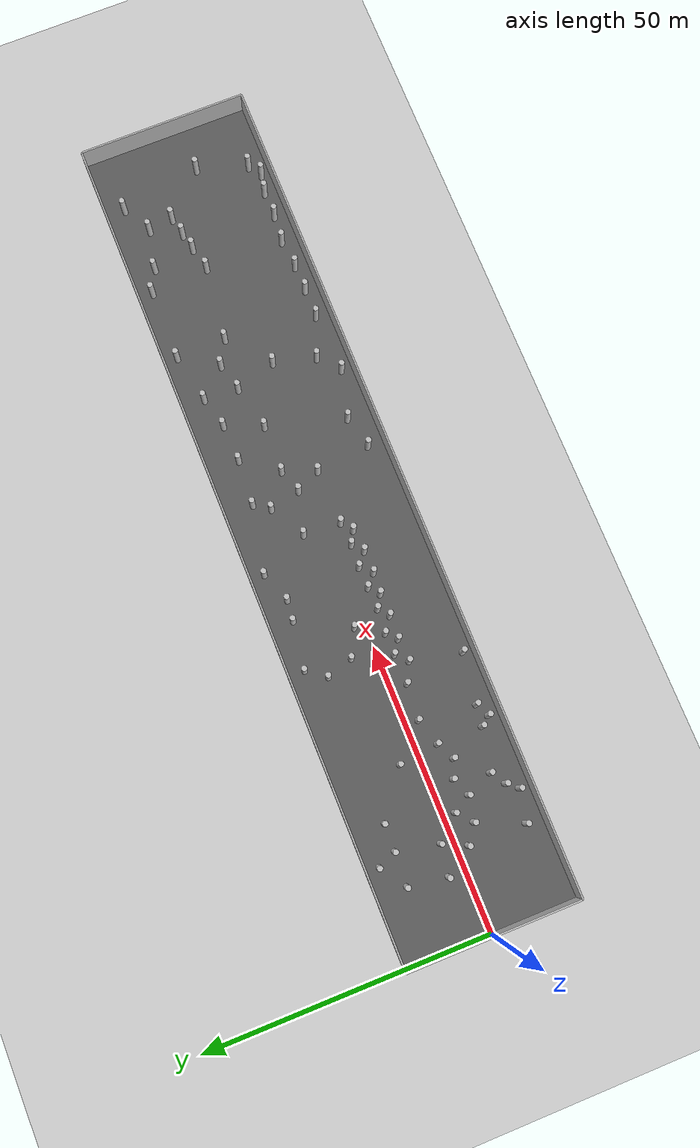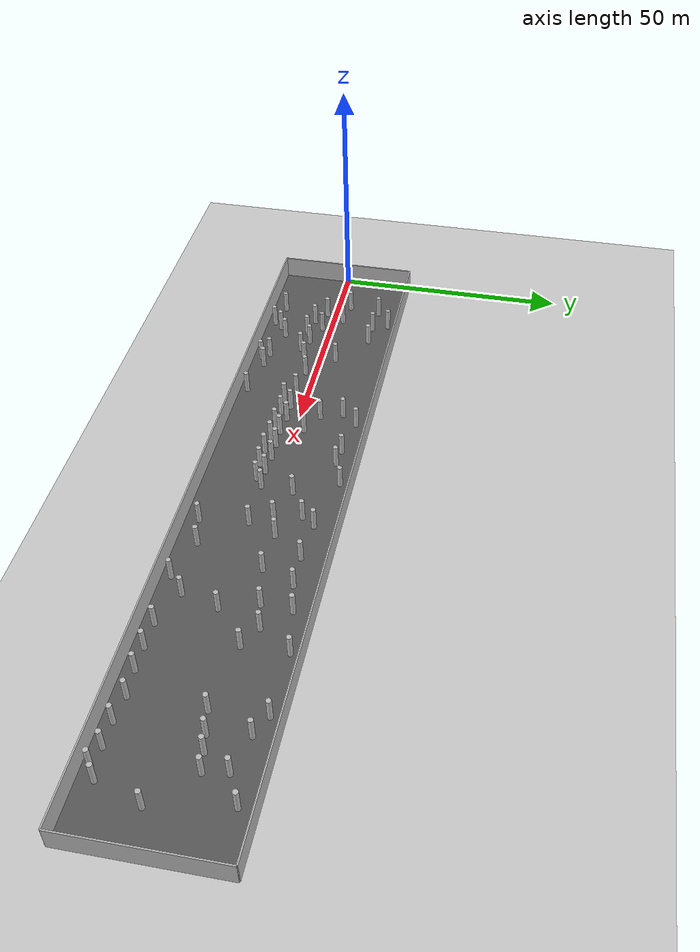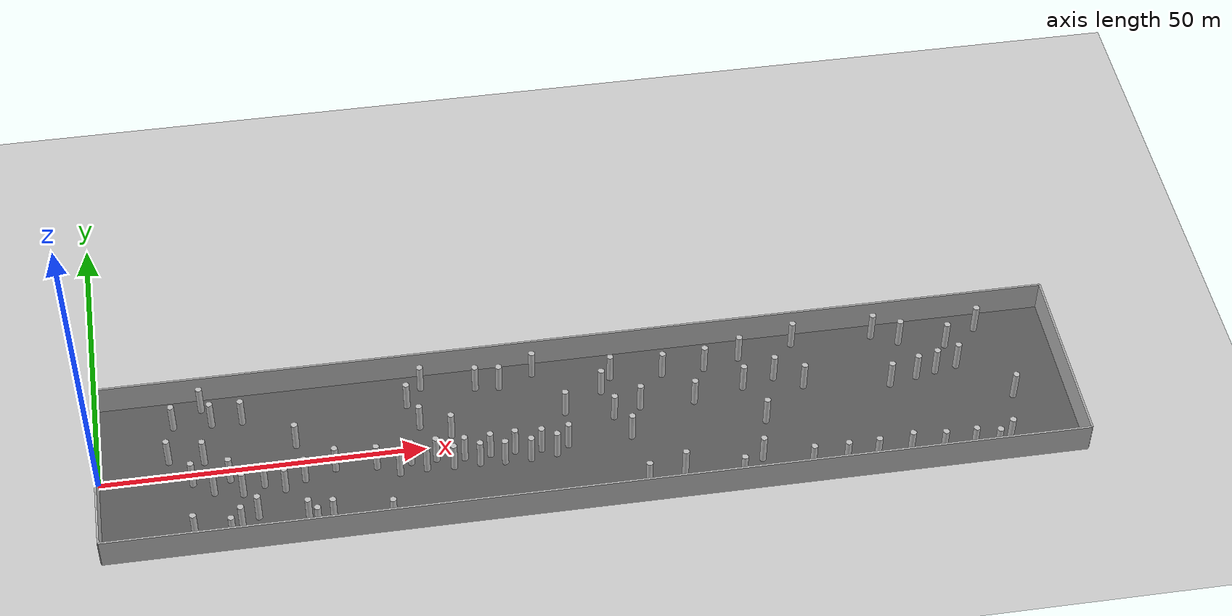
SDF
<?xml version="1.0" ?>
<sdf version="1.5">
  <world name="default">
    <plugin name="gazebo_ros_state" filename="libgazebo_ros_state.so">
      <ros>
        <namespace>/gazebo</namespace>
      </ros>
      <update_rate>20.0</update_rate>
    </plugin>

    <include><uri>model://sun</uri></include>
    <include><uri>model://ground_plane</uri></include>

    <model name="corridor_floor">
      <static>true</static>
      <pose>75 0 0.01 0 0 0</pose>
      <link name="link">
        <collision name="collision">
          <geometry><box><size>150 30 0.02</size></box></geometry>
        </collision>
        <visual name="visual">
          <geometry><box><size>150 30 0.02</size></box></geometry>
          <material>
            <ambient>0.25 0.25 0.25 1</ambient>
            <diffuse>0.35 0.35 0.35 1</diffuse>
          </material>
        </visual>
      </link>
    </model>

    <physics name="default_physics" default="0" type="ode">
      <gravity>0 0 -9.8066</gravity>
      <ode>
        <solver>
          <type>quick</type>
          <iters>10</iters>
          <sor>1.3</sor>
          <use_dynamic_moi_rescaling>0</use_dynamic_moi_rescaling>
        </solver>
        <constraints>
          <cfm>0</cfm>
          <erp>0.2</erp>
          <contact_max_correcting_vel>100</contact_max_correcting_vel>
          <contact_surface_layer>0.001</contact_surface_layer>
        </constraints>
      </ode>
      <max_step_size>0.004</max_step_size>
      <real_time_factor>1</real_time_factor>
      <real_time_update_rate>250</real_time_update_rate>
      <magnetic_field>6.0e-6 2.3e-5 -4.2e-5</magnetic_field>
    </physics>

    <model name="left_wall">
      <static>true</static>
      <pose>75 15.15 2.5 0 0 0</pose>
      <link name="link">
        <collision name="collision">
          <geometry><box><size>150 0.3 5</size></box></geometry>
        </collision>
        <visual name="visual">
          <geometry><box><size>150 0.3 5</size></box></geometry>
        </visual>
      </link>
    </model>

    <model name="right_wall">
      <static>true</static>
      <pose>75 -15.15 2.5 0 0 0</pose>
      <link name="link">
        <collision name="collision">
          <geometry><box><size>150 0.3 5</size></box></geometry>
        </collision>
        <visual name="visual">
          <geometry><box><size>150 0.3 5</size></box></geometry>
        </visual>
      </link>
    </model>

    <model name="start_wall">
      <static>true</static>
      <pose>0 0 2.5 0 0 0</pose>
      <link name="link">
        <collision name="collision">
          <geometry><box><size>0.3 30.3 5</size></box></geometry>
        </collision>
        <visual name="visual">
          <geometry><box><size>0.3 30.3 5</size></box></geometry>
        </visual>
      </link>
    </model>

    <model name="end_wall">
      <static>true</static>
      <pose>150 0 2.5 0 0 0</pose>
      <link name="link">
        <collision name="collision">
          <geometry><box><size>0.3 30.3 5</size></box></geometry>
        </collision>
        <visual name="visual">
          <geometry><box><size>0.3 30.3 5</size></box></geometry>
        </visual>
      </link>
    </model>

    <include><name>cylinder_000</name><uri>model://cylinder_r05_h5</uri><pose>32.353 -13.152 2.5 0 0 0</pose></include>
    <include><name>cylinder_001</name><uri>model://cylinder_r05_h5</uri><pose>31.138 -3.525 2.5 0 0 0</pose></include>
    <include><name>cylinder_002</name><uri>model://cylinder_r05_h5</uri><pose>34.741 -11.988 2.5 0 0 0</pose></include>
    <include><name>cylinder_003</name><uri>model://cylinder_r05_h5</uri><pose>42.108 -2.669 2.5 0 0 0</pose></include>
    <include><name>cylinder_004</name><uri>model://cylinder_r05_h5</uri><pose>21.659 -5.033 2.5 0 0 0</pose></include>
    <include><name>cylinder_005</name><uri>model://cylinder_r05_h5</uri><pose>21.105 -11.392 2.5 0 0 0</pose></include>
    <include><name>cylinder_006</name><uri>model://cylinder_r05_h5</uri><pose>31.083 -11.492 2.5 0 0 0</pose></include>
    <include><name>cylinder_007</name><uri>model://cylinder_r05_h5</uri><pose>24.955 -3.695 2.5 0 0 0</pose></include>
    <include><name>cylinder_008</name><uri>model://cylinder_r05_h5</uri><pose>17.324 -4.144 2.5 0 0 0</pose></include>
    <include><name>cylinder_009</name><uri>model://cylinder_r05_h5</uri><pose>28.022 -5.050 2.5 0 0 0</pose></include>
    <include><name>cylinder_010</name><uri>model://cylinder_r05_h5</uri><pose>19.872 -1.894 2.5 0 0 0</pose></include>
    <include><name>cylinder_011</name><uri>model://cylinder_r05_h5</uri><pose>35.862 -2.113 2.5 0 0 0</pose></include>
    <include><name>cylinder_012</name><uri>model://cylinder_r05_h5</uri><pose>19.569 -13.213 2.5 0 0 0</pose></include>
    <include><name>cylinder_013</name><uri>model://cylinder_r05_h5</uri><pose>43.593 -13.337 2.5 0 0 0</pose></include>
    <include><name>cylinder_014</name><uri>model://cylinder_r05_h5</uri><pose>23.637 -9.746 2.5 0 0 0</pose></include>
    <include><name>cylinder_015</name><uri>model://cylinder_r05_h5</uri><pose>47.367 -2.589 2.5 0 0 0</pose></include>
    <include><name>cylinder_016</name><uri>model://cylinder_r05_h5</uri><pose>45.458 -4.454 2.5 0 0 0</pose></include>
    <include><name>cylinder_017</name><uri>model://cylinder_r05_h5</uri><pose>51.221 -2.503 2.5 0 0 0</pose></include>
    <include><name>cylinder_018</name><uri>model://cylinder_r05_h5</uri><pose>49.580 -4.174 2.5 0 0 0</pose></include>
    <include><name>cylinder_019</name><uri>model://cylinder_r05_h5</uri><pose>55.519 -2.901 2.5 0 0 0</pose></include>
    <include><name>cylinder_020</name><uri>model://cylinder_r05_h5</uri><pose>53.733 -4.358 2.5 0 0 0</pose></include>
    <include><name>cylinder_021</name><uri>model://cylinder_r05_h5</uri><pose>59.477 -2.773 2.5 0 0 0</pose></include>
    <include><name>cylinder_022</name><uri>model://cylinder_r05_h5</uri><pose>57.733 -4.299 2.5 0 0 0</pose></include>
    <include><name>cylinder_023</name><uri>model://cylinder_r05_h5</uri><pose>63.287 -2.688 2.5 0 0 0</pose></include>
    <include><name>cylinder_024</name><uri>model://cylinder_r05_h5</uri><pose>61.519 -4.588 2.5 0 0 0</pose></include>
    <include><name>cylinder_025</name><uri>model://cylinder_r05_h5</uri><pose>67.344 -2.939 2.5 0 0 0</pose></include>
    <include><name>cylinder_026</name><uri>model://cylinder_r05_h5</uri><pose>65.535 -4.555 2.5 0 0 0</pose></include>
    <include><name>cylinder_027</name><uri>model://cylinder_r05_h5</uri><pose>71.530 -2.672 2.5 0 0 0</pose></include>
    <include><name>cylinder_028</name><uri>model://cylinder_r05_h5</uri><pose>69.540 -4.189 2.5 0 0 0</pose></include>
    <include><name>cylinder_029</name><uri>model://cylinder_r05_h5</uri><pose>96.808 -13.052 2.5 0 0 0</pose></include>
    <include><name>cylinder_030</name><uri>model://cylinder_r05_h5</uri><pose>81.403 -2.445 2.5 0 0 0</pose></include>
    <include><name>cylinder_031</name><uri>model://cylinder_r05_h5</uri><pose>88.224 -10.722 2.5 0 0 0</pose></include>
    <include><name>cylinder_032</name><uri>model://cylinder_r05_h5</uri><pose>102.396 -2.374 2.5 0 0 0</pose></include>
    <include><name>cylinder_033</name><uri>model://cylinder_r05_h5</uri><pose>100.373 -9.835 2.5 0 0 0</pose></include>
    <include><name>cylinder_034</name><uri>model://cylinder_r05_h5</uri><pose>82.417 -12.148 2.5 0 0 0</pose></include>
    <include><name>cylinder_035</name><uri>model://cylinder_r05_h5</uri><pose>107.573 -12.562 2.5 0 0 0</pose></include>
    <include><name>cylinder_036</name><uri>model://cylinder_r05_h5</uri><pose>112.853 -12.619 2.5 0 0 0</pose></include>
    <include><name>cylinder_037</name><uri>model://cylinder_r05_h5</uri><pose>117.620 -12.585 2.5 0 0 0</pose></include>
    <include><name>cylinder_038</name><uri>model://cylinder_r05_h5</uri><pose>122.911 -12.156 2.5 0 0 0</pose></include>
    <include><name>cylinder_039</name><uri>model://cylinder_r05_h5</uri><pose>127.911 -12.705 2.5 0 0 0</pose></include>
    <include><name>cylinder_040</name><uri>model://cylinder_r05_h5</uri><pose>132.689 -12.706 2.5 0 0 0</pose></include>
    <include><name>cylinder_041</name><uri>model://cylinder_r05_h5</uri><pose>14.021 -11.952 2.5 0 0 0</pose></include>
    <include><name>cylinder_042</name><uri>model://cylinder_r05_h5</uri><pose>14.239 -1.874 2.5 0 0 0</pose></include>
    <include><name>cylinder_043</name><uri>model://cylinder_r05_h5</uri><pose>138.551 -11.892 2.5 0 0 0</pose></include>
    <include><name>cylinder_044</name><uri>model://cylinder_r05_h5</uri><pose>141.430 -2.977 2.5 0 0 0</pose></include>
    <include><name>cylinder_045</name><uri>model://cylinder_r05_h5</uri><pose>136.199 -13.448 2.5 0 0 0</pose></include>
    <include><name>cylinder_046</name><uri>model://cylinder_r05_h5</uri><pose>49.437 4.322 2.5 0 0 0</pose></include>
    <include><name>cylinder_047</name><uri>model://cylinder_r05_h5</uri><pose>105.244 6.161 2.5 0 0 0</pose></include>
    <include><name>cylinder_048</name><uri>model://cylinder_r05_h5</uri><pose>83.649 3.317 2.5 0 0 0</pose></include>
    <include><name>cylinder_049</name><uri>model://cylinder_r05_h5</uri><pose>122.277 12.532 2.5 0 0 0</pose></include>
    <include><name>cylinder_050</name><uri>model://cylinder_r05_h5</uri><pose>109.420 12.728 2.5 0 0 0</pose></include>
    <include><name>cylinder_051</name><uri>model://cylinder_r05_h5</uri><pose>54.062 1.889 2.5 0 0 0</pose></include>
    <include><name>cylinder_052</name><uri>model://cylinder_r05_h5</uri><pose>50.443 12.274 2.5 0 0 0</pose></include>
    <include><name>cylinder_053</name><uri>model://cylinder_r05_h5</uri><pose>71.996 3.905 2.5 0 0 0</pose></include>
    <include><name>cylinder_054</name><uri>model://cylinder_r05_h5</uri><pose>30.304 3.471 2.5 0 0 0</pose></include>
    <include><name>cylinder_055</name><uri>model://cylinder_r05_h5</uri><pose>68.013 12.609 2.5 0 0 0</pose></include>
    <include><name>cylinder_056</name><uri>model://cylinder_r05_h5</uri><pose>126.290 10.593 2.5 0 0 0</pose></include>
    <include><name>cylinder_057</name><uri>model://cylinder_r05_h5</uri><pose>109.551 3.790 2.5 0 0 0</pose></include>
    <include><name>cylinder_058</name><uri>model://cylinder_r05_h5</uri><pose>79.365 1.902 2.5 0 0 0</pose></include>
    <include><name>cylinder_059</name><uri>model://cylinder_r05_h5</uri><pose>127.403 3.042 2.5 0 0 0</pose></include>
    <include><name>cylinder_060</name><uri>model://cylinder_r05_h5</uri><pose>88.138 9.447 2.5 0 0 0</pose></include>
    <include><name>cylinder_061</name><uri>model://cylinder_r05_h5</uri><pose>94.860 9.688 2.5 0 0 0</pose></include>
    <include><name>cylinder_062</name><uri>model://cylinder_r05_h5</uri><pose>58.880 11.007 2.5 0 0 0</pose></include>
    <include><name>cylinder_063</name><uri>model://cylinder_r05_h5</uri><pose>133.438 8.905 2.5 0 0 0</pose></include>
    <include><name>cylinder_064</name><uri>model://cylinder_r05_h5</uri><pose>138.836 11.698 2.5 0 0 0</pose></include>
    <include><name>cylinder_065</name><uri>model://cylinder_r05_h5</uri><pose>17.775 9.560 2.5 0 0 0</pose></include>
    <include><name>cylinder_066</name><uri>model://cylinder_r05_h5</uri><pose>22.484 9.435 2.5 0 0 0</pose></include>
    <include><name>cylinder_067</name><uri>model://cylinder_r05_h5</uri><pose>16.356 12.858 2.5 0 0 0</pose></include>
    <include><name>cylinder_068</name><uri>model://cylinder_r05_h5</uri><pose>16.195 2.180 2.5 0 0 0</pose></include>
    <include><name>cylinder_069</name><uri>model://cylinder_r05_h5</uri><pose>10.839 3.006 2.5 0 0 0</pose></include>
    <include><name>cylinder_070</name><uri>model://cylinder_r05_h5</uri><pose>130.600 3.736 2.5 0 0 0</pose></include>
    <include><name>cylinder_071</name><uri>model://cylinder_r05_h5</uri><pose>100.586 11.043 2.5 0 0 0</pose></include>
    <include><name>cylinder_072</name><uri>model://cylinder_r05_h5</uri><pose>100.147 4.915 2.5 0 0 0</pose></include>
    <include><name>cylinder_073</name><uri>model://cylinder_r05_h5</uri><pose>62.551 10.594 2.5 0 0 0</pose></include>
    <include><name>cylinder_074</name><uri>model://cylinder_r05_h5</uri><pose>78.140 7.355 2.5 0 0 0</pose></include>
    <include><name>cylinder_075</name><uri>model://cylinder_r05_h5</uri><pose>123.022 2.061 2.5 0 0 0</pose></include>
    <include><name>cylinder_076</name><uri>model://cylinder_r05_h5</uri><pose>79.989 10.056 2.5 0 0 0</pose></include>
    <include><name>cylinder_077</name><uri>model://cylinder_r05_h5</uri><pose>11.902 9.856 2.5 0 0 0</pose></include>
    <include><name>cylinder_078</name><uri>model://cylinder_r05_h5</uri><pose>47.969 9.008 2.5 0 0 0</pose></include>
    <include><name>cylinder_079</name><uri>model://cylinder_r05_h5</uri><pose>92.148 3.137 2.5 0 0 0</pose></include>
    <include><name>cylinder_080</name><uri>model://cylinder_r05_h5</uri><pose>134.134 4.411 2.5 0 0 0</pose></include>

  </world>
</sdf>

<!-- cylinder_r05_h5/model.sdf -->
<sdf version="1.5">
  <model name="cylinder_r05_h5">
    <static>true</static>
    <link name="link">
      <collision name="collision">
        <geometry>
          <cylinder>
            <radius>0.5</radius>
            <length>5</length>
          </cylinder>
        </geometry>
      </collision>
      <visual name="visual">
        <geometry>
          <cylinder>
            <radius>0.5</radius>
            <length>5</length>
          </cylinder>
        </geometry>
        <material>
          <ambient>0.5 0.5 0.5 1</ambient>
          <diffuse>0.75 0.75 0.75 1</diffuse>
        </material>
      </visual>
    </link>
  </model>
</sdf>
